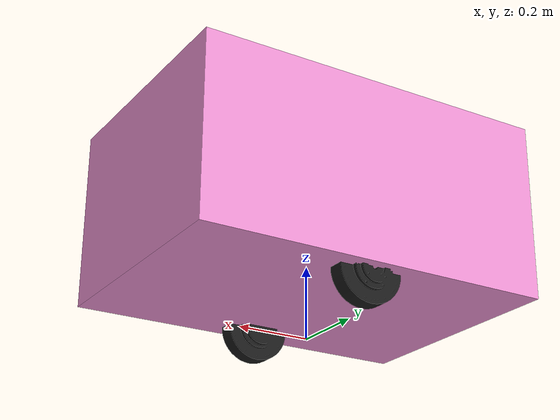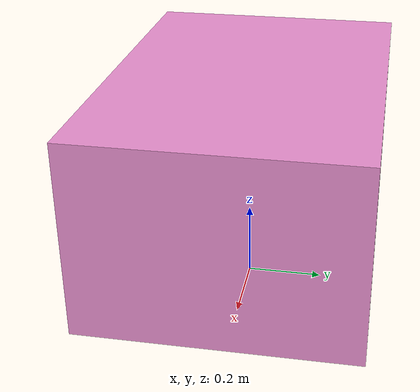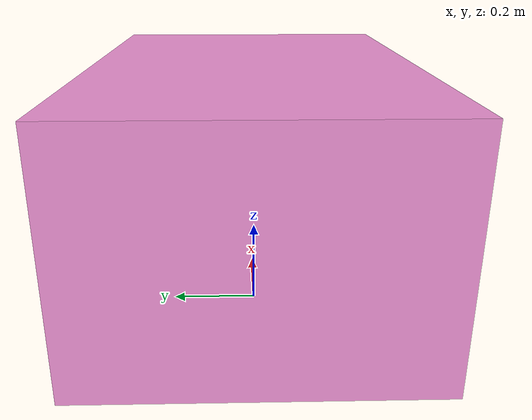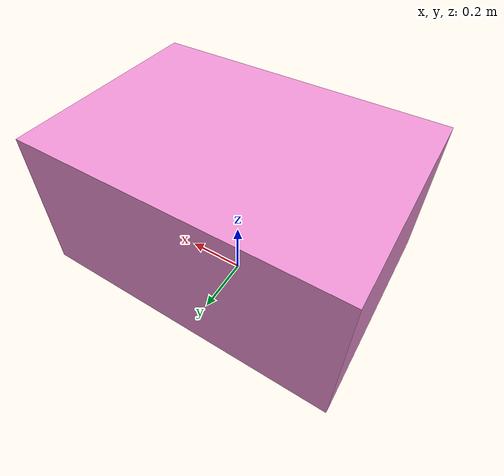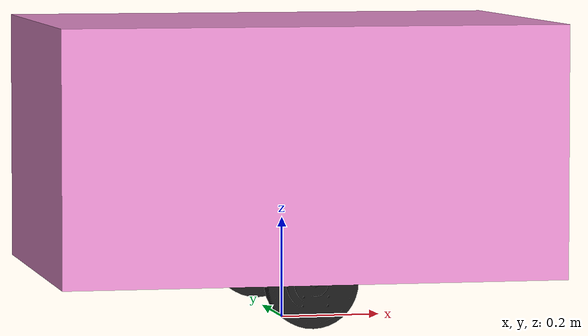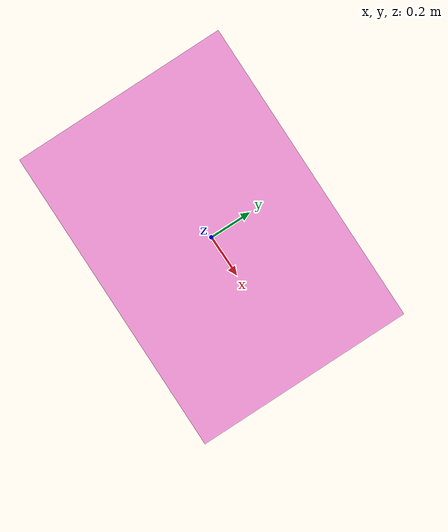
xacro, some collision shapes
<?xml version="1.0"?>
<robot name="seer_amb" xmlns:xacro="http://ros.org/wiki/xacro">

  <xacro:property name="base_mass" value="110.0" />
  <xacro:property name="wheel_mass" value="6.0" />

  <xacro:property name="wheel_radius" value="0.1" />
  <xacro:property name="wheel_length" value="0.05" />

  <xacro:property name="wheel_ygap" value="0.3" />
  <xacro:property name="wheel_xoff" value="0.0" />
  <xacro:property name="wheel_zoff" value="0.1" />

  <link name="base_footprint" />

  <joint name="base_joint" type="fixed">
    <parent link="base_footprint" />
    <child link="base_link" />
    <origin xyz="0.0 0.0 ${wheel_radius - wheel_zoff}" rpy="0 0 0" />
  </joint>

  <link name="base_link">
    <visual>
      <origin xyz="0 0 0.26" rpy="0 0 ${pi}" />
      <geometry>
        <mesh filename="package://seer_description/meshes/robot_body.stl" scale="0.1 0.1 0.1" />
      </geometry>
      <material name="orange">
        <color rgba="0.922 0.57 0.82 1.0" />
      </material>
    </visual>

    <collision>
      <origin xyz="0 0 0.35" rpy="0 0 0" />
      <geometry>
        <box size="1.00 0.70 0.50" />
      </geometry>
    </collision>

    <inertial>
      <origin xyz="0 0 0.15" rpy="0 0 0" />
      <mass value="${base_mass}" />
      <inertia ixx="3.11" ixy="0.0" ixz="0.0" iyy="6.68" iyz="0.0" izz="8.15" />
    </inertial>
  </link>

  <xacro:macro name="drive_wheel" params="prefix y_reflect filename">
    <link name="${prefix}_wheel_link">
      <visual>
        <origin xyz="0 0 0" rpy="0 0 0" />
        <geometry>
          <mesh filename="package://seer_description/meshes/${filename}" scale="0.1 0.1 0.1" />
        </geometry>
        <material name="black">
          <color rgba="0.1 0.1 0.1 1.0" />
        </material>
      </visual>

      <collision>
        <origin xyz="0 0 0" rpy="${pi/2} 0 0" />
        <geometry>
          <cylinder radius="${wheel_radius}" length="${wheel_length}" />
        </geometry>
      </collision>

      <inertial>
        <origin xyz="0 0 0" rpy="${pi/2} 0 0" />
        <mass value="${wheel_mass}" />
        <inertia ixx="0.01" ixy="0.0" ixz="0.0" iyy="0.01" iyz="0.0" izz="0.01" />
      </inertial>
    </link>

    <joint name="${prefix}_wheel_joint" type="continuous">
      <parent link="base_link" />
      <child link="${prefix}_wheel_link" />
      <origin xyz="${wheel_xoff} ${y_reflect * wheel_ygap} ${wheel_zoff}" rpy="0 0 0" />
      <axis xyz="0 1 0" />
    </joint>
  </xacro:macro>
  <xacro:drive_wheel prefix="left" y_reflect="1" filename="left_wheel.stl" />
  <xacro:drive_wheel prefix="right" y_reflect="-1" filename="right_wheel.stl" />

  <xacro:macro name="lidar" params="prefix xy_reflect x_offset y_offset filename">
    <link name="${prefix}_lidar_link">
      <visual>
        <origin xyz="0 0 0" rpy="0 0 0" />
        <geometry>
          <mesh filename="package://seer_description/meshes/${filename}" scale="0.1 0.1 0.1" />
        </geometry>
        <material name="grey">
          <color rgba="0.5 0.5 0.5 1.0" />
        </material>
      </visual>

      <collision>
        <origin xyz="0 0 0" rpy="0 0 0" />
        <geometry>
          <cylinder radius="0.05" length="0.08" />
        </geometry>
      </collision>

      <inertial>
        <origin xyz="0 0 0" rpy="0 0 0" />
        <mass value="0.3" />
        <inertia ixx="0.01" ixy="0.0" ixz="0.0" iyy="0.01" iyz="0.0" izz="0.01" />
      </inertial>
    </link>

    <joint name="${prefix}_lidar_joint" type="fixed">
      <parent link="base_link" />
      <child link="${prefix}_lidar_link" />
      <origin xyz="${x_offset*xy_reflect} ${y_offset*xy_reflect} 0.2" rpy="0 0 0" />
    </joint>
  </xacro:macro>
  <xacro:lidar prefix="front" xy_reflect="1" x_offset="0.38" y_offset="0.25" filename="lidar.stl" />
  <xacro:lidar prefix="back" xy_reflect="-1" x_offset="0.38" y_offset="0.25" filename="lidar.stl" />

  <link name="front_caster">
    <collision>
      <origin xyz="0 0 0" rpy="0 0 0" />
      <geometry>
        <sphere radius="${wheel_radius - 0.005}" />
      </geometry>
    </collision>
    <inertial>
      <mass value="1.0" />
      <inertia ixx="0.01" ixy="0" ixz="0" iyy="0.01" iyz="0" izz="0.01" />
    </inertial>
  </link>

  <link name="rear_caster">
    <collision>
      <origin xyz="0 0 0" rpy="0 0 0" />
      <geometry>
        <sphere radius="${wheel_radius - 0.005}" />
      </geometry>
    </collision>
    <inertial>
      <mass value="1.0" />
      <inertia ixx="0.01" ixy="0" ixz="0" iyy="0.01" iyz="0" izz="0.01" />
    </inertial>
  </link>

  <joint name="front_caster_joint" type="fixed">
    <parent link="base_link" />
    <child link="front_caster" />
    <origin xyz="0.3 0 ${wheel_radius - 0.005}" rpy="0 0 0" />
  </joint>

  <joint name="rear_caster_joint" type="fixed">
    <parent link="base_link" />
    <child link="rear_caster" />
    <origin xyz="-0.3 0 ${wheel_radius - 0.005}" rpy="0 0 0" />
  </joint>

  <!-- control simulation gazebo -->

  <gazebo reference="base_link">
    <material>Gazebo/White</material>
  </gazebo>

  <gazebo reference="left_wheel_link">
    <material>Gazebo/Black</material>
    <mu1>1.0</mu1>
    <mu2>1.0</mu2>
  </gazebo>

  <gazebo reference="right_wheel_link">
    <material>Gazebo/Black</material>
    <mu1>1.0</mu1>
    <mu2>1.0</mu2>
  </gazebo>

  <gazebo reference="front_caster">
    <mu1>0.0</mu1>
    <mu2>0.0</mu2>
    <material>Gazebo/Grey</material>
  </gazebo>

  <gazebo reference="rear_caster">
    <mu1>0.0</mu1>
    <mu2>0.0</mu2>
    <material>Gazebo/Grey</material>
  </gazebo>
  <gazebo>
    <plugin filename="gz-sim-diff-drive-system" name="gz::sim::systems::DiffDrive">
      <left_joint>left_wheel_joint</left_joint>
      <right_joint>right_wheel_joint</right_joint>

      <wheel_separation>${wheel_ygap * 2}</wheel_separation>
      <wheel_radius>${wheel_radius}</wheel_radius>
      <max_linear_acceleration>1.0</max_linear_acceleration>
      <max_angular_acceleration>1.0</max_angular_acceleration>
      <max_linear_velocity>1.5</max_linear_velocity>
      <max_angular_velocity>0.5</max_angular_velocity>

      <topic>cmd_vel</topic>
      <odom_topic>odom</odom_topic>
      <frame_id>odom</frame_id>
      <child_frame_id>base_footprint</child_frame_id>
      <odom_publisher_frequency>30</odom_publisher_frequency>
    </plugin>

    <plugin filename="gz-sim-joint-state-publisher-system"
      name="gz::sim::systems::JointStatePublisher">
      <topic>joint_states</topic>
      <joint_name>left_wheel_joint</joint_name>
      <joint_name>right_wheel_joint</joint_name>
    </plugin>
  </gazebo>

  <gazebo reference="front_lidar_link">
    <sensor name="front_lidar_sensor" type="gpu_lidar">
      <topic>/lidar_front</topic>
      <gz_frame_id>front_lidar_link</gz_frame_id>
      <update_rate>10</update_rate>
      <ray>
        <scan>
          <horizontal>
            <samples>360</samples>
            <resolution>1</resolution>
            <min_angle>-3.14159</min_angle>
            <max_angle>3.14159</max_angle>
          </horizontal>
          <vertical>
            <samples>16</samples>
            <resolution>1</resolution>
            <min_angle>-0.2618</min_angle>
            <max_angle>0.2618</max_angle>
          </vertical>
        </scan>
        <range>
          <min>0.2</min>
          <max>30.0</max>
          <resolution>0.01</resolution>
        </range>
      </ray>
      <always_on>1</always_on>
      <visualize>true</visualize>
    </sensor>
  </gazebo>
  <gazebo reference="back_lidar_link">
    <sensor name="back_lidar_sensor" type="gpu_lidar">
      <topic>/lidar_back</topic>
      <gz_frame_id>back_lidar_link</gz_frame_id>
      <update_rate>10</update_rate>
      <ray>
        <scan>
          <horizontal>
            <samples>360</samples>
            <resolution>1</resolution>
            <min_angle>-3.14159</min_angle>
            <max_angle>3.14159</max_angle>
          </horizontal>
          <vertical>
            <samples>16</samples>
            <resolution>1</resolution>
            <min_angle>-0.2618</min_angle>
            <max_angle>0.2618</max_angle>
          </vertical>
        </scan>
        <range>
          <min>0.2</min>
          <max>30.0</max>
          <resolution>0.01</resolution>
        </range>
      </ray>
      <always_on>1</always_on>
      <visualize>true</visualize>
    </sensor>
  </gazebo>
  <gazebo>
    <plugin filename="gz-sim-sensors-system" name="gz::sim::systems::Sensors">
      <render_engine>ogre2</render_engine>
    </plugin>
  </gazebo>
</robot>
